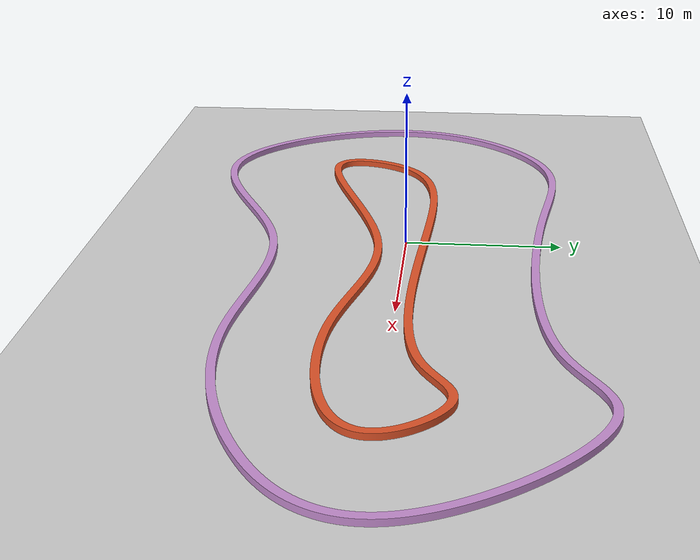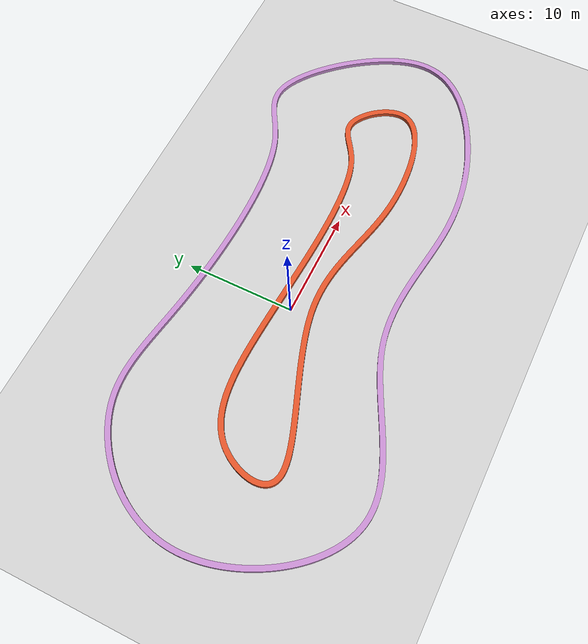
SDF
<?xml version="1.0" ?>

<sdf version="1.6">
    <world name="default">
        <!-- Light -->
        <light name='sun' type='directional'>
            <cast_shadows>1</cast_shadows>
            <pose>0 0 10 0 -0 0</pose>
            <diffuse>1.0 1.0 1.0 1</diffuse>
            <specular>0.2 0.2 0.2 1</specular>
            <attenuation>
                <range>5000</range>
                <constant>0.9</constant>
                <linear>0.01</linear>
                <quadratic>0.001</quadratic>
            </attenuation>
            <direction>-0.5 0.1 -0.9</direction>
        </light>
        <!-- Ground plane -->
        <model name='ground_plane'>
        <static>1</static>
            <link name='link'>
                <collision name='collision'>
                    <geometry>
                        <plane>
                            <normal>0 0 1</normal>
                            <size>100 100</size>
                        </plane>
                    </geometry>
                    <surface>
                        <friction>
                            <ode>
                                <mu>100</mu>
                                <mu2>50</mu2>
                            </ode>
                        </friction>
                        <bounce/>
                        <contact>
                            <ode/>
                        </contact>
                    </surface>
                    <max_contacts>10</max_contacts>
                </collision>
                <visual name='visual'>
                    <cast_shadows>0</cast_shadows>
                    <geometry>
                        <plane>
                        <normal>0 0 1</normal>
                        <size>100 100</size>
                        </plane>
                    </geometry>
                    <material>
                        <script>
                        <uri>file://media/materials/scripts/gazebo.material</uri>
                        <name>Gazebo/Grey</name>
                        </script>
                    </material>
                </visual>
                <velocity_decay>
                    <linear>0</linear>
                    <angular>0</angular>
                </velocity_decay>
                <self_collide>0</self_collide>
                <kinematic>0</kinematic>
                <gravity>1</gravity>
            </link>
        </model>

        <physics type='ode'>
            <max_step_size>0.001</max_step_size>
            <real_time_factor>1</real_time_factor>
            <real_time_update_rate>1000</real_time_update_rate>
        </physics>
        <scene>
            <ambient>0.4 0.4 0.4 1</ambient>
            <background>0.7 0.7 0.7 1</background>
            <shadows>1</shadows>
        </scene>
        <spherical_coordinates>
            <surface_model>EARTH_WGS84</surface_model>
            <latitude_deg>0</latitude_deg>
            <longitude_deg>0</longitude_deg>
            <elevation>0</elevation>
            <heading_deg>0</heading_deg>
        </spherical_coordinates>

        <model name="race_track">
            <pose>0 0 0 0 0 0</pose>
            <static>true</static>
            <link name="body">
                <collision name="collision">
                <geometry>
                    <mesh>
                        <uri>model://racetrack_smooth/meshes/race_track.dae</uri>
                        <scale>5 5 1</scale>
                    </mesh>
                </geometry>
                </collision>
                <visual name="visual">
                <geometry>
                    <mesh>
                        <uri>model://racetrack_smooth/meshes/race_track.dae</uri>
                        <scale>5 5 1</scale>
                    </mesh>
                </geometry>
                </visual>
            </link>
        </model>
        <gravity>0 0 -9.8</gravity>
    </world>
</sdf>
